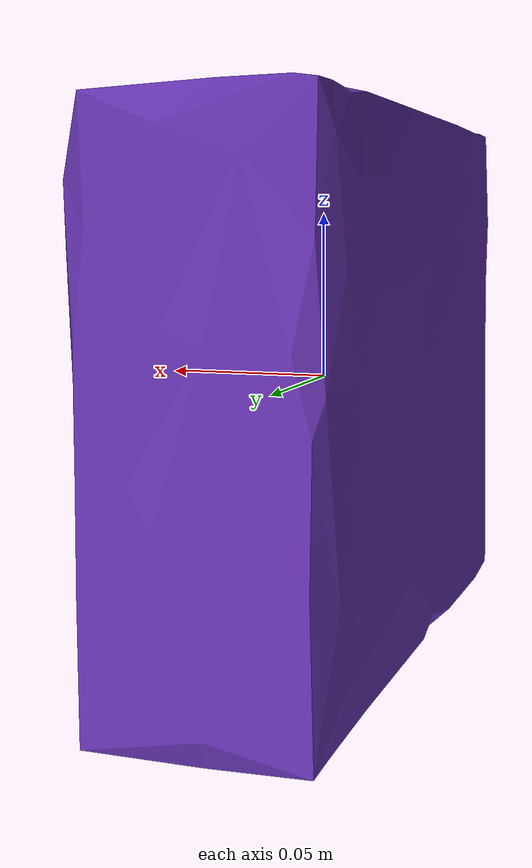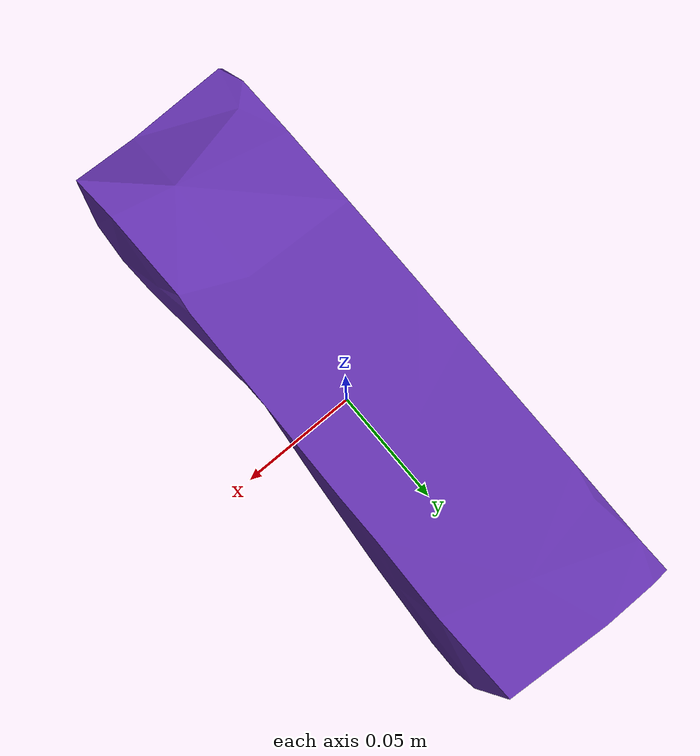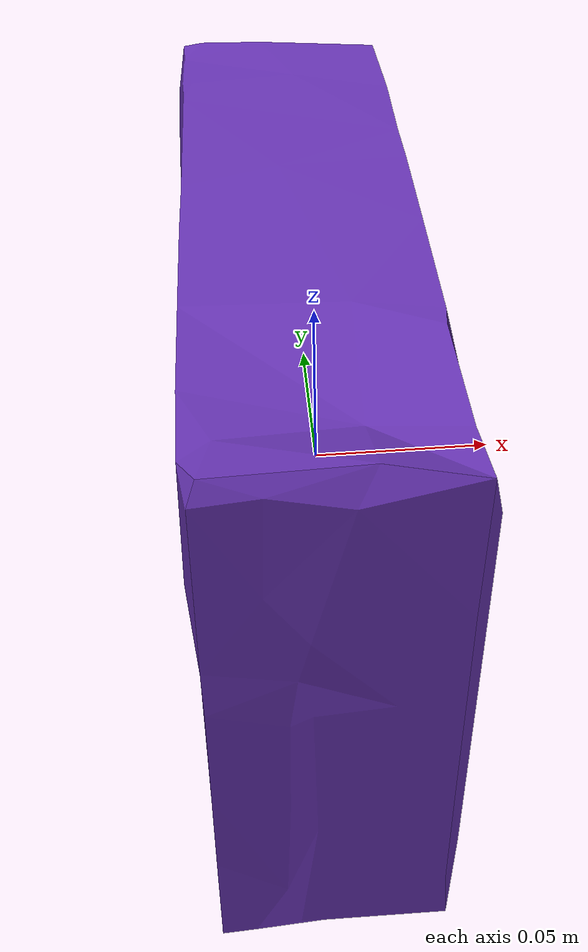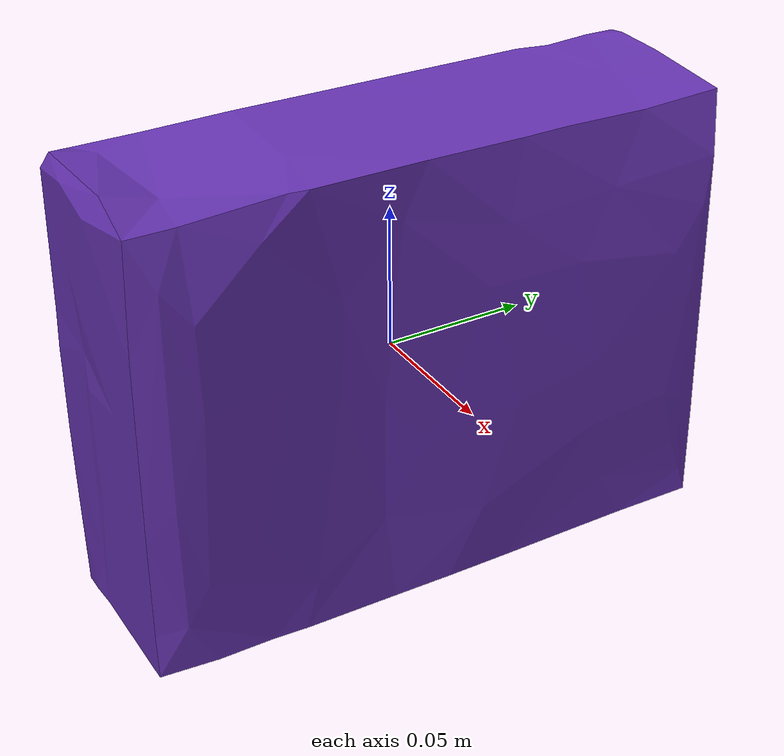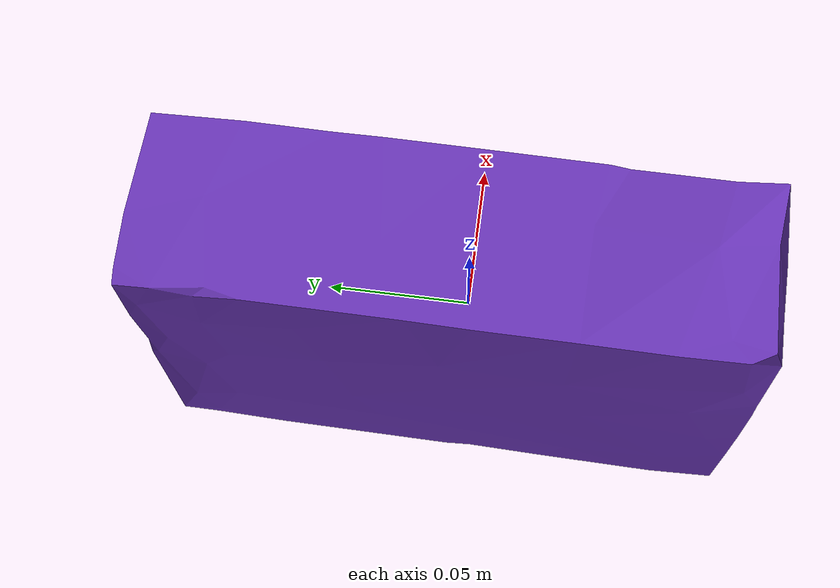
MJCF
<mujoco model="top_watertight_tiny">

  <asset>
    <mesh file="top_watertight_tiny.obj"/>
    <mesh file="top_watertight_tiny_collision_0.obj"/>
    <mesh file="top_watertight_tiny_collision_1.obj"/>
  </asset>
  <worldbody>
    <body name="top_watertight_tiny">
      <freejoint/>
      <geom solimp="0.90 0.95 0.001" solref="0.02 1.0" density="100" friction="0.95 0.4 0.3" rgba="0.4 0.2 0.7 1" mesh="top_watertight_tiny" group="2" type="mesh" contype="0" conaffinity="0"/>
      <geom solimp="0.90 0.95 0.001" solref="0.02 1.0" density="100" friction="0.95 0.4 0.3" mesh="top_watertight_tiny_collision_0" rgba="0.03177112047542152 0.20120381492493333 0.40503777496614224 1" group="3" type="mesh"/>
      <geom solimp="0.90 0.95 0.001" solref="0.02 1.0" density="100" friction="0.95 0.4 0.3" mesh="top_watertight_tiny_collision_1" rgba="0.299342236626594 0.9338799247281162 0.5733787553541544 1" group="3" type="mesh"/>
    </body>
  </worldbody>
</mujoco>
